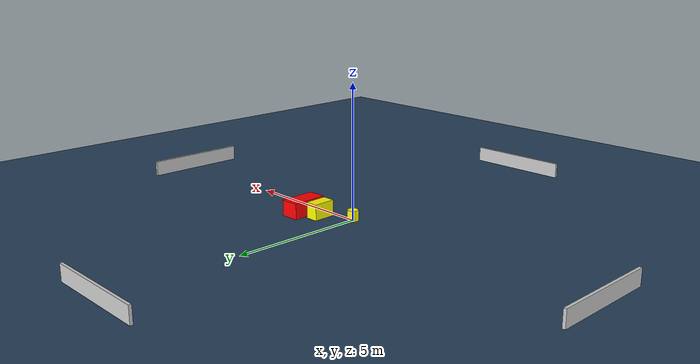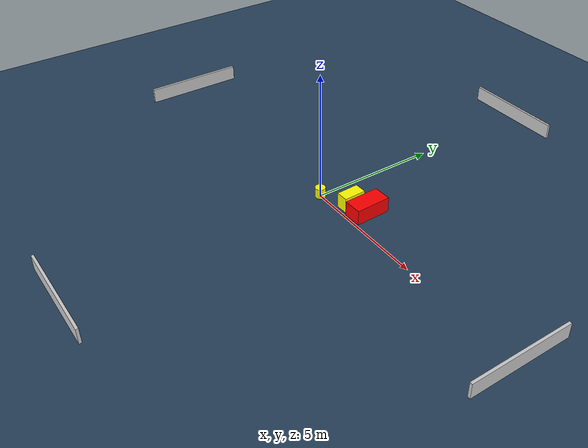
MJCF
<?xml version="1.0" ?>
<mujoco model="generated_environment">
  <option timestep="0.01" integrator="RK4" cone="elliptic"/>
  <default>
    <geom density="1"/>
  </default>
  <asset>
    <texture builtin="gradient" height="3072" name="skybox" rgb1="0.3 0.5 0.7" rgb2="0 0 0" type="skybox" width="512"/>
    <texture builtin="checker" height="300" name="groundplane" rgb1="0.2 0.3 0.4" rgb2="0.1 0.2 0.3" type="2d" width="300"/>
    <material name="groundplane" reflectance="0.2" texrepeat="5 5" texture="groundplane"/>
  </asset>
  <worldbody>
    <light dir="0 0 -1" directional="true" pos="0 0 1.5"/>
    <geom condim="3" friction="0.5 0.005 0.001" material="groundplane" name="floor" pos="0 0 0" size="0 0 0.05" type="plane"/>
    <body name="walls">
      <geom name="wall_1" condim="4" pos="-10.0 0.0 0.3" rgba="0.800000011920929 0.800000011920929 0.800000011920929 1.0" size="0.05 2.0 0.3" type="box"/>
      <geom name="wall_2" condim="4" pos="10.0 0.0 0.3" rgba="0.800000011920929 0.800000011920929 0.800000011920929 1.0" size="0.05 2.0 0.3" type="box"/>
      <geom name="wall_3" condim="4" pos="0.0 -10.0 0.3" rgba="0.800000011920929 0.800000011920929 0.800000011920929 1.0" size="2.0 0.05 0.3" type="box"/>
      <geom name="wall_4" condim="4" pos="0.0 10.0 0.3" rgba="0.800000011920929 0.800000011920929 0.800000011920929 1.0" size="2.0 0.05 0.3" type="box"/>
    </body>
    <body name="robot">
      <joint name="joint_x" type="slide" pos="0 0 0" axis="1 0 0"/>
      <joint name="joint_y" type="slide" pos="0 0 0" axis="0 1 0"/>
      <geom name="robot" type="cylinder" pos="0.0 0.0 0.2" size="0.2 0.2 0.0" mass="5.0" friction="1.0 0.005 0.0001" condim="4" rgba="1.0 1.0 0.0 1.0"/>
    </body>
    <body name="obstacle_1_movable">
      <geom name="obstacle_1_movable" condim="4" pos="1.1151613684421537 0.5835573238150135 0.3" euler="0 0 271.776021927821" friction="0.0 0.005 0.001" rgba="1.0 1.0 0.0 1.0" size="0.43274624674288364 0.23528995441716744 0.3" type="box" mass="0.1"/>
      <joint type="free"/>
    </body>
    <body name="obstacle_2_static">
      <geom name="obstacle_2_static" condim="4" pos="1.818049089184879 0.7773348891355049 0.3" euler="0 0 271.6412452866595" friction="0.0 0.005 0.001" rgba="1.0 0.0 0.0 1.0" size="0.688804545176264 0.35405233836284966 0.3" type="box"/>
    </body>
  </worldbody>
  <actuator>
    <motor name="actuator_x" joint="joint_x" gear="1" ctrlrange="-1 1"/>
    <motor name="actuator_y" joint="joint_y" gear="1" ctrlrange="-1 1"/>
  </actuator>
</mujoco>
